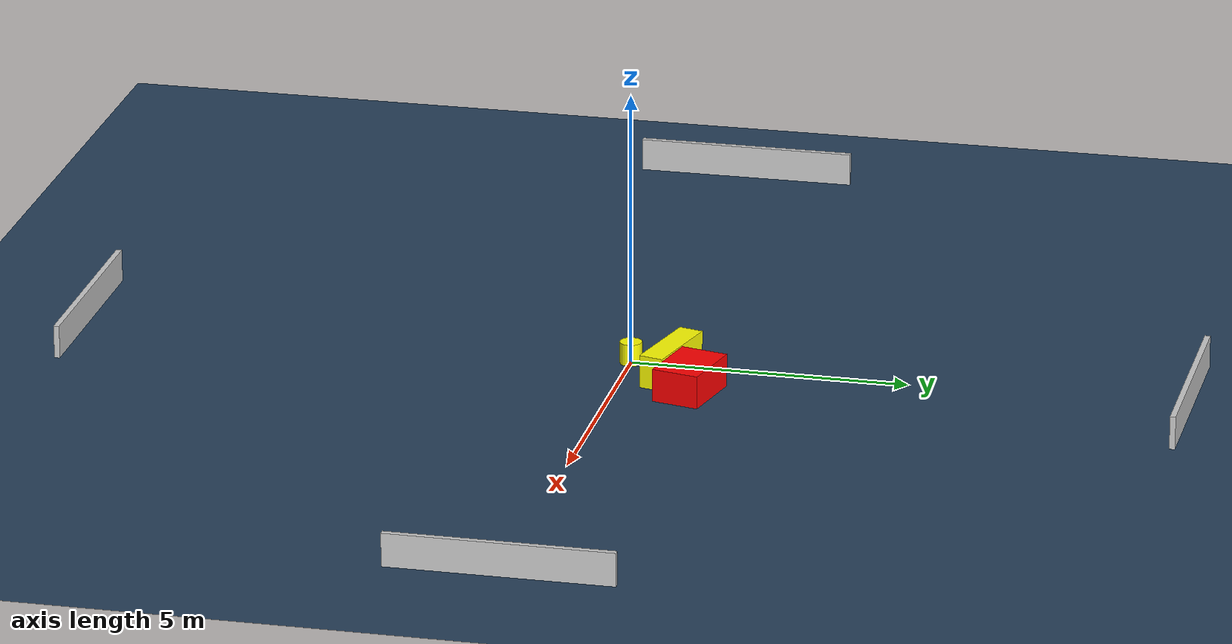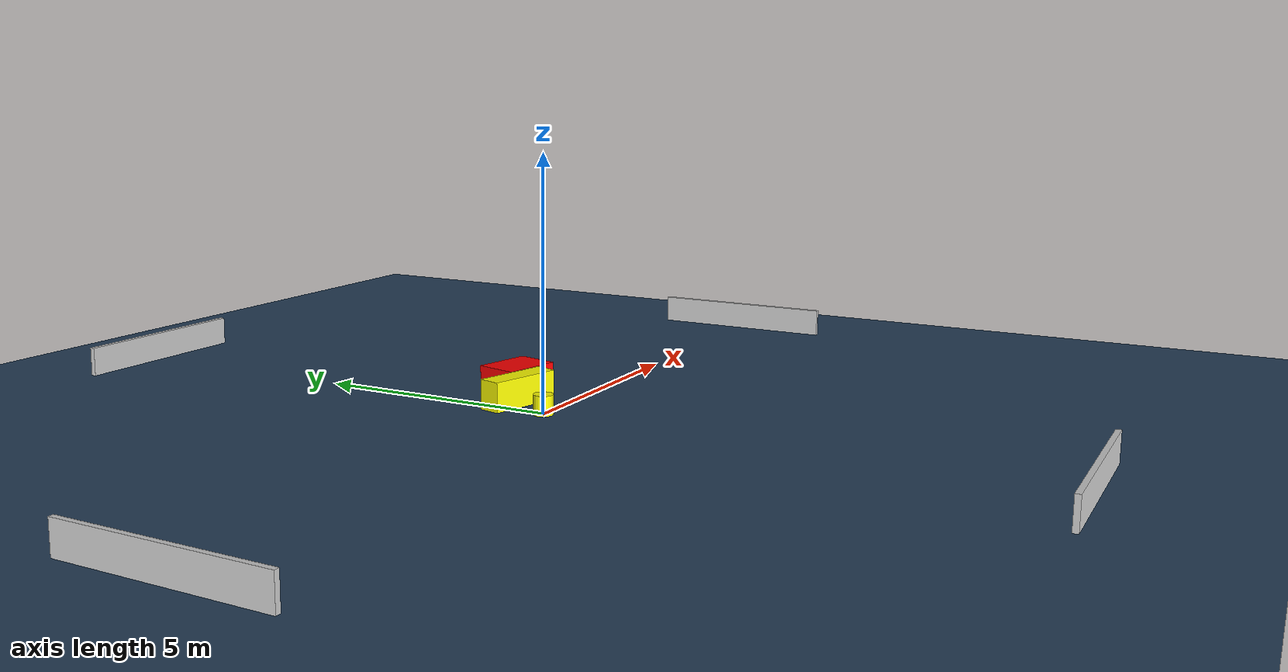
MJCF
<?xml version="1.0" ?>
<mujoco model="generated_environment">
  <option timestep="0.01" integrator="RK4" cone="elliptic"/>
  <default>
    <geom density="1"/>
  </default>
  <asset>
    <texture builtin="gradient" height="3072" name="skybox" rgb1="0.3 0.5 0.7" rgb2="0 0 0" type="skybox" width="512"/>
    <texture builtin="checker" height="300" name="groundplane" rgb1="0.2 0.3 0.4" rgb2="0.1 0.2 0.3" type="2d" width="300"/>
    <material name="groundplane" reflectance="0.2" texrepeat="5 5" texture="groundplane"/>
  </asset>
  <worldbody>
    <light dir="0 0 -1" directional="true" pos="0 0 1.5"/>
    <geom condim="3" friction="0.5 0.005 0.001" material="groundplane" name="floor" pos="0 0 0" size="0 0 0.05" type="plane"/>
    <body name="walls">
      <geom name="wall_1" condim="4" pos="-10.0 0.0 0.3" rgba="0.800000011920929 0.800000011920929 0.800000011920929 1.0" size="0.05 2.0 0.3" type="box"/>
      <geom name="wall_2" condim="4" pos="10.0 0.0 0.3" rgba="0.800000011920929 0.800000011920929 0.800000011920929 1.0" size="0.05 2.0 0.3" type="box"/>
      <geom name="wall_3" condim="4" pos="0.0 -10.0 0.3" rgba="0.800000011920929 0.800000011920929 0.800000011920929 1.0" size="2.0 0.05 0.3" type="box"/>
      <geom name="wall_4" condim="4" pos="0.0 10.0 0.3" rgba="0.800000011920929 0.800000011920929 0.800000011920929 1.0" size="2.0 0.05 0.3" type="box"/>
    </body>
    <body name="robot">
      <joint name="joint_x" type="slide" pos="0 0 0" axis="1 0 0"/>
      <joint name="joint_y" type="slide" pos="0 0 0" axis="0 1 0"/>
      <geom name="robot" type="cylinder" pos="0.0 0.0 0.2" size="0.2 0.2 0.0" mass="5.0" friction="1.0 0.005 0.0001" condim="4" rgba="1.0 1.0 0.0 1.0"/>
    </body>
    <body name="obstacle_1_movable">
      <geom name="obstacle_1_movable" condim="4" pos="0.4363642401464758 0.8213315599504947 0.3" euler="0 0 255.40300955681076" friction="0.0 0.005 0.001" rgba="1.0 1.0 0.0 1.0" size="0.22182777462245876 0.7878963034184749 0.3" type="box" mass="0.1"/>
      <joint type="free"/>
    </body>
    <body name="obstacle_2_static">
      <geom name="obstacle_2_static" condim="4" pos="1.24518295054919 1.3338018599823906 0.3" euler="0 0 166.95573096483898" friction="0.0 0.005 0.001" rgba="1.0 0.0 0.0 1.0" size="0.6155455240066177 0.43153876493025856 0.3" type="box"/>
    </body>
  </worldbody>
  <actuator>
    <motor name="actuator_x" joint="joint_x" gear="1" ctrlrange="-1 1"/>
    <motor name="actuator_y" joint="joint_y" gear="1" ctrlrange="-1 1"/>
  </actuator>
</mujoco>
